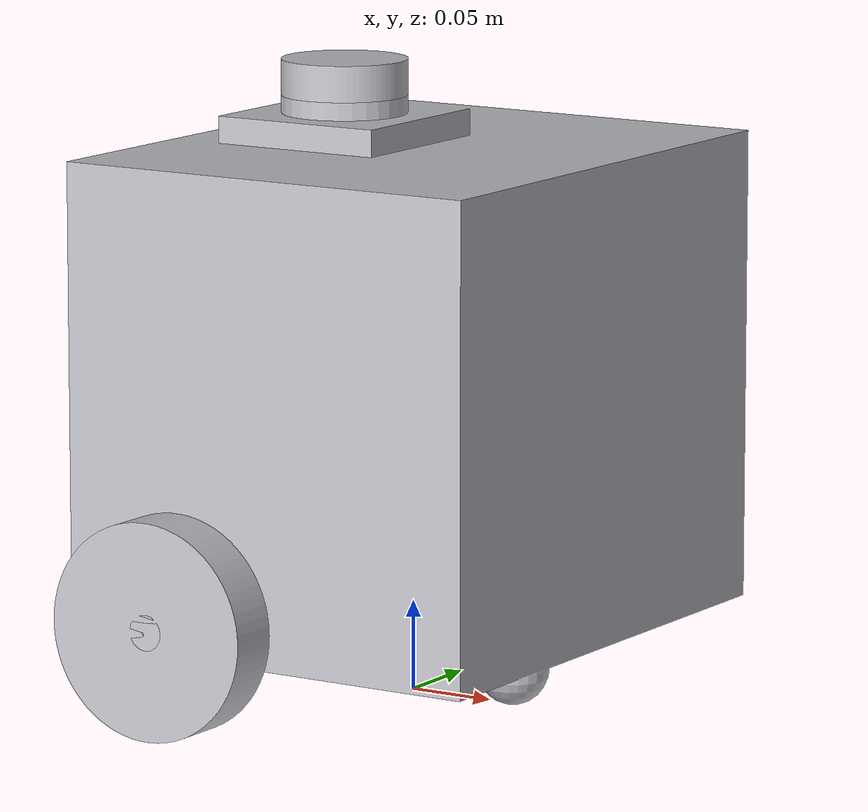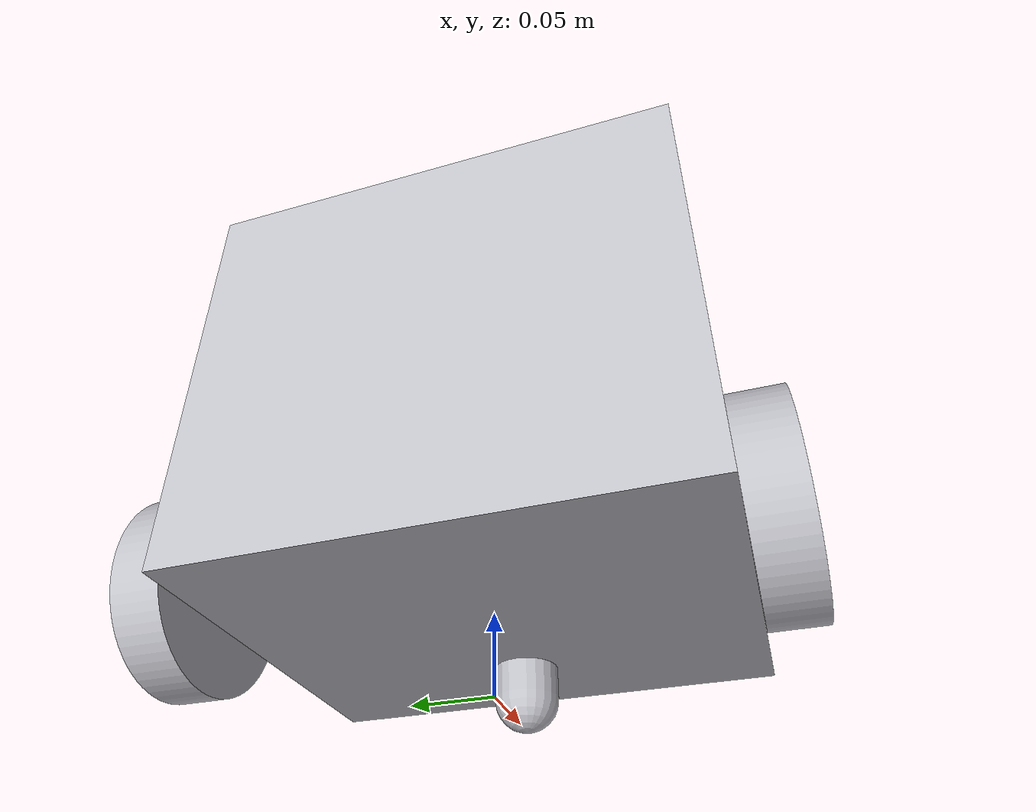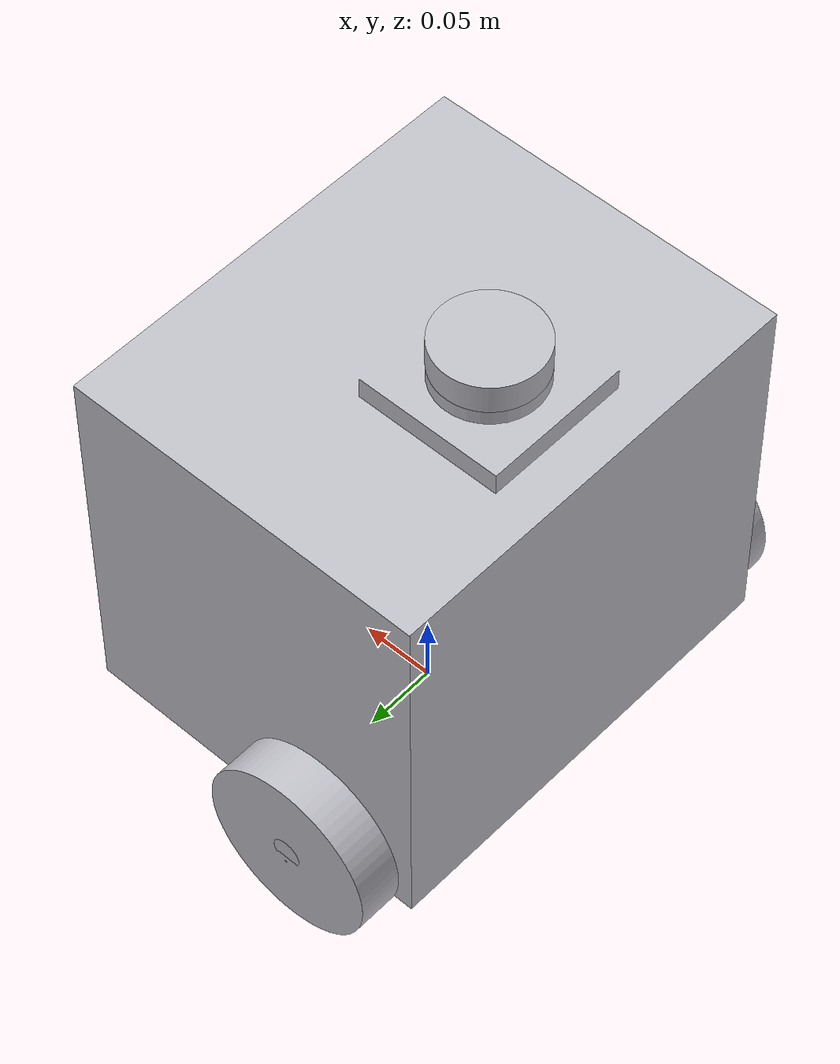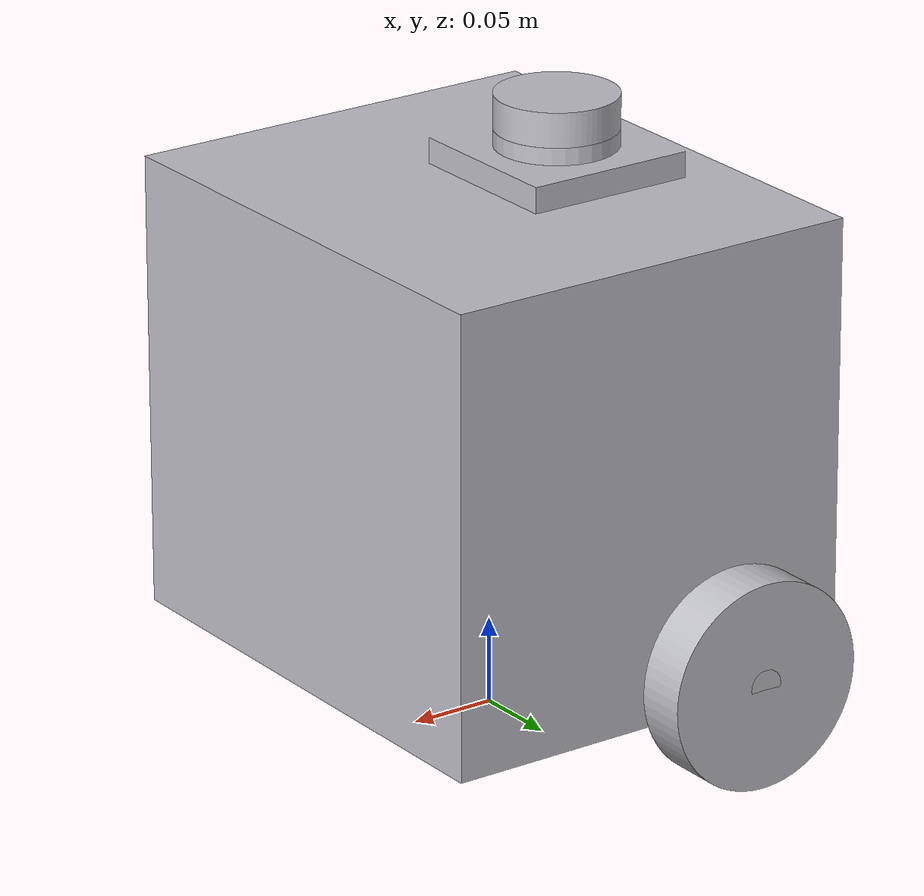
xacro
<?xml version="1.0" ?>
<robot name="robot_rover" xmlns:xacro="http://www.ros.org/wiki/xacro">

<xacro:include filename="$(find robot_rover_description)/urdf/materials.xacro" />
<xacro:include filename="$(find robot_rover_description)/urdf/robot_rover.trans" />
<xacro:include filename="$(find robot_rover_description)/urdf/robot_rover.gazebo" />
<link name="base_link">
  <inertial>
    <origin xyz="-0.00033769329833865616 -2.89241795315588e-17 0.17341859806595633" rpy="0 0 0"/>
    <mass value="157.97514244861068"/>
    <inertia ixx="2.127575" iyy="1.770811" izz="1.993805" ixy="-0.0" iyz="-0.0" ixz="0.011722"/>
  </inertial>
  <visual>
    <origin xyz="0 0 0" rpy="0 0 0"/>
    <geometry>
      <mesh filename="package://robot_rover_description/meshes/base_link.stl" scale="0.001 0.001 0.001"/>
    </geometry>
    <material name="silver"/>
  </visual>
  <collision>
    <origin xyz="0 0 0" rpy="0 0 0"/>
    <geometry>
      <mesh filename="package://robot_rover_description/meshes/base_link.stl" scale="0.001 0.001 0.001"/>
    </geometry>
  </collision>
</link>

<link name="left_1">
  <inertial>
    <origin xyz="-6.938893903907228e-17 -0.015000000000000013 -6.938893903907228e-18" rpy="0 0 0"/>
    <mass value="2.663442251713429"/>
    <inertia ixx="0.002597" iyy="0.004794" izz="0.002597" ixy="0.0" iyz="-0.0" ixz="-0.0"/>
  </inertial>
  <visual>
    <origin xyz="0.055 0.15 -0.06" rpy="0 0 0"/>
    <geometry>
      <mesh filename="package://robot_rover_description/meshes/left_1.stl" scale="0.001 0.001 0.001"/>
    </geometry>
    <material name="silver"/>
  </visual>
  <collision>
    <origin xyz="0.055 0.15 -0.06" rpy="0 0 0"/>
    <geometry>
      <mesh filename="package://robot_rover_description/meshes/left_1.stl" scale="0.001 0.001 0.001"/>
    </geometry>
  </collision>
</link>

<link name="right_1">
  <inertial>
    <origin xyz="-6.938893903907228e-17 0.015000000000000013 -6.938893903907228e-18" rpy="0 0 0"/>
    <mass value="2.663442251713429"/>
    <inertia ixx="0.002597" iyy="0.004794" izz="0.002597" ixy="0.0" iyz="0.0" ixz="-0.0"/>
  </inertial>
  <visual>
    <origin xyz="0.055 -0.15 -0.06" rpy="0 0 0"/>
    <geometry>
      <mesh filename="package://robot_rover_description/meshes/right_1.stl" scale="0.001 0.001 0.001"/>
    </geometry>
    <material name="silver"/>
  </visual>
  <collision>
    <origin xyz="0.055 -0.15 -0.06" rpy="0 0 0"/>
    <geometry>
      <mesh filename="package://robot_rover_description/meshes/right_1.stl" scale="0.001 0.001 0.001"/>
    </geometry>
  </collision>
</link>

<link name="lidar_1">
  <inertial>
    <origin xyz="-6.938893903907228e-17 -2.2155700638222048e-17 0.010000000000000009" rpy="0 0 0"/>
    <mass value="0.6042068071016569"/>
    <inertia ixx="0.000205" iyy="0.000205" izz="0.00037" ixy="0.0" iyz="-0.0" ixz="0.0"/>
  </inertial>
  <visual>
    <origin xyz="0.045 0.0 -0.33" rpy="0 0 0"/>
    <geometry>
      <mesh filename="package://robot_rover_description/meshes/lidar_1.stl" scale="0.001 0.001 0.001"/>
    </geometry>
    <material name="silver"/>
  </visual>
  <collision>
    <origin xyz="0.045 0.0 -0.33" rpy="0 0 0"/>
    <geometry>
      <mesh filename="package://robot_rover_description/meshes/lidar_1.stl" scale="0.001 0.001 0.001"/>
    </geometry>
  </collision>
</link>

<joint name="Revolute 1" type="continuous">
  <origin xyz="-0.055 -0.15 0.06" rpy="0 0 0"/>
  <parent link="base_link"/>
  <child link="left_1"/>
  <axis xyz="0.0 1.0 0.0"/>
</joint>

<joint name="Revolute 2" type="continuous">
  <origin xyz="-0.055 0.15 0.06" rpy="0 0 0"/>
  <parent link="base_link"/>
  <child link="right_1"/>
  <axis xyz="0.0 -1.0 0.0"/>
</joint>

<joint name="Rigid 3" type="fixed">
  <origin xyz="-0.045 0.0 0.33" rpy="0 0 0"/>
  <parent link="base_link"/>
  <child link="lidar_1"/>
</joint>

</robot>
